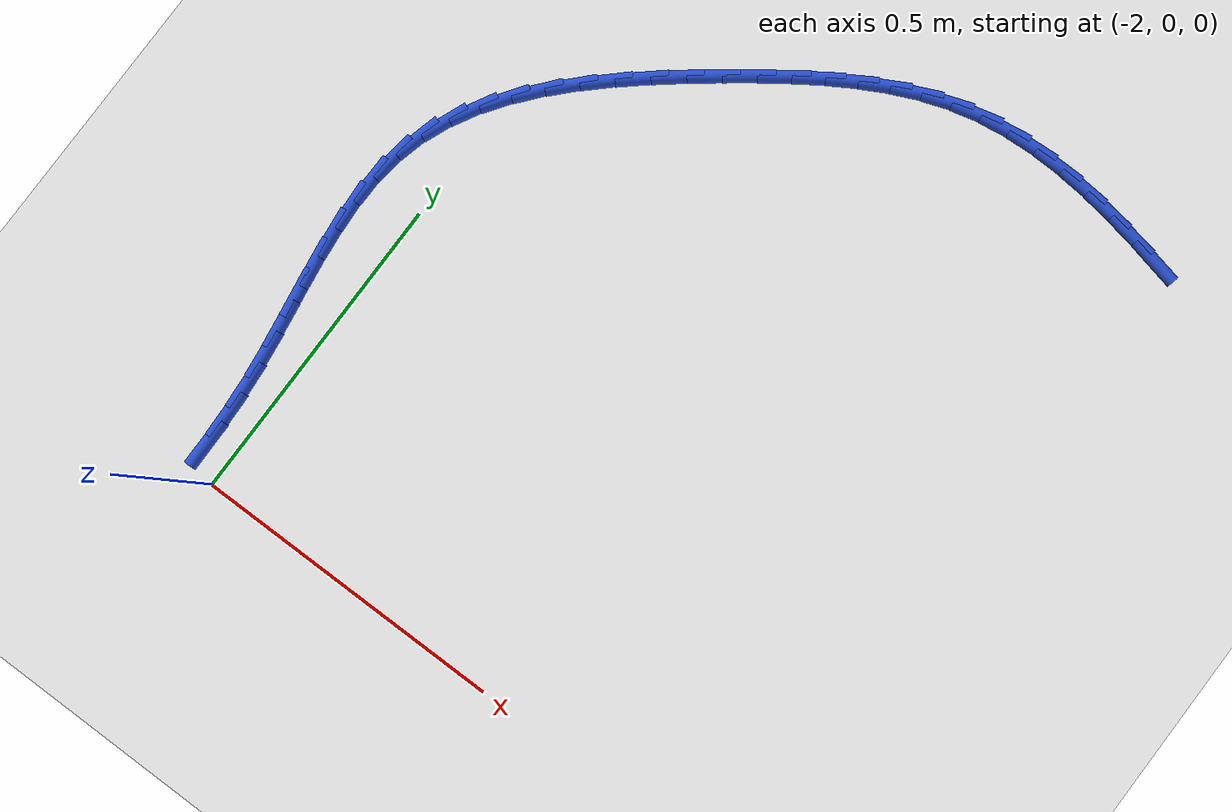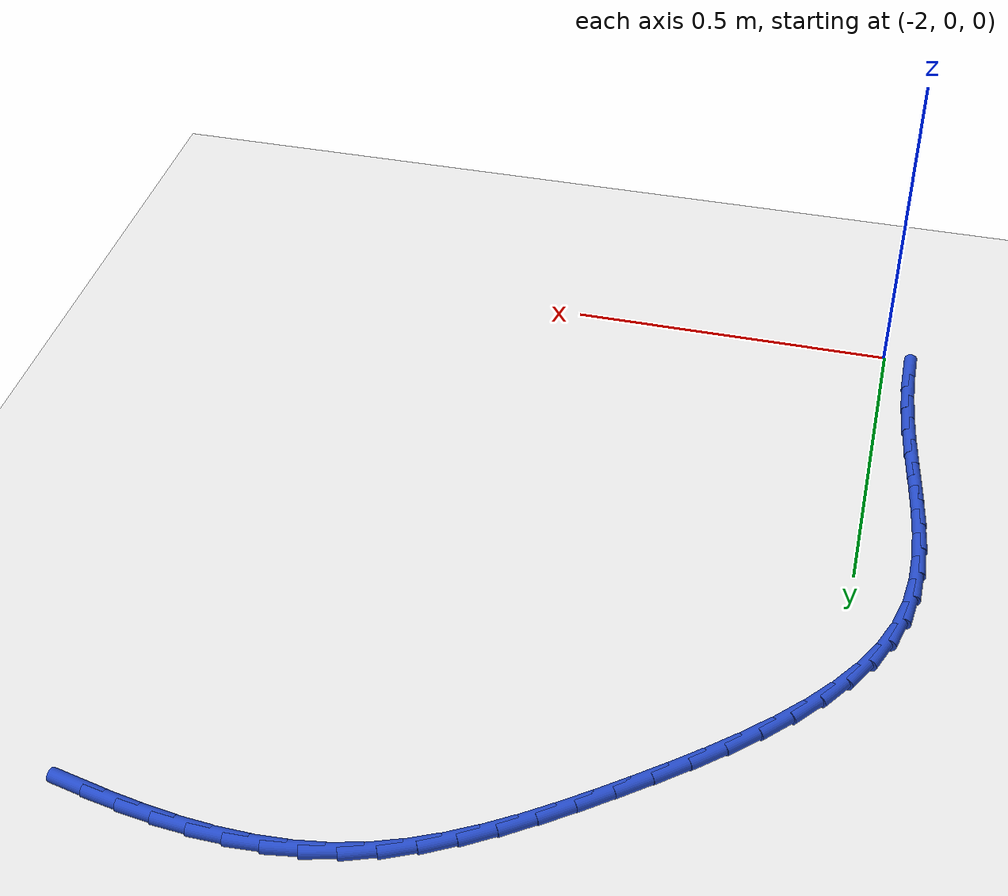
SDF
<sdf version="1.6">
 <world name="default">
  <model name="ground_plane">
   <static>1</static>
   <link name="link">
    <collision name="collision">
     <geometry><plane><normal>0 0 1</normal><size>100 100</size></plane></geometry>
     <surface><friction><ode><mu>100</mu><mu2>50</mu2></ode></friction></surface>
    </collision>
    <visual name="visual">
     <cast_shadows>0</cast_shadows>
     <geometry><plane><normal>0 0 1</normal><size>100 100</size></plane></geometry>
     <material>
      <script><uri>file://media/materials/scripts/gazebo.material</uri><name>Gazebo/WhiteGlow</name></script>
     </material>
    </visual>
   </link>
  </model>
  <model name="line">
   <link name="link_34">
    <pose>-1.0915207571480003 1.0925164339957065 0.01 0 1.57 -0.21035020720188574</pose>
    <collision name="collision">
     <geometry><cylinder><radius>0.01</radius><length>0.08</length></cylinder></geometry>
    </collision>
    <visual name="visual">
     <material>
      <script><name>Gazebo/Blue</name><uri>file://media/materials/scripts/gazebo.material</uri></script>
     </material>
     <geometry><cylinder><radius>0.01</radius><length>0.08</length></cylinder></geometry>
    </visual>
   </link>
   <link name="link_35">
    <pose>-1.1414643811776826 1.1031798266787785 0.01 0 1.57 -0.1757204989856719</pose>
    <collision name="collision">
     <geometry><cylinder><radius>0.01</radius><length>0.08</length></cylinder></geometry>
    </collision>
    <visual name="visual">
     <material>
      <script><name>Gazebo/Blue</name><uri>file://media/materials/scripts/gazebo.material</uri></script>
     </material>
     <geometry><cylinder><radius>0.01</radius><length>0.08</length></cylinder></geometry>
    </visual>
   </link>
   <link name="link_36">
    <pose>-1.1910998647097921 1.1119926928793287 0.01 0 1.57 -0.13164096641273396</pose>
    <collision name="collision">
     <geometry><cylinder><radius>0.01</radius><length>0.08</length></cylinder></geometry>
    </collision>
    <visual name="visual">
     <material>
      <script><name>Gazebo/Blue</name><uri>file://media/materials/scripts/gazebo.material</uri></script>
     </material>
     <geometry><cylinder><radius>0.01</radius><length>0.08</length></cylinder></geometry>
    </visual>
   </link>
   <link name="link_37">
    <pose>-1.240315626546367 1.1185091890913694 0.01 0 1.57 -0.07737065513932036</pose>
    <collision name="collision">
     <geometry><cylinder><radius>0.01</radius><length>0.08</length></cylinder></geometry>
    </collision>
    <visual name="visual">
     <material>
      <script><name>Gazebo/Blue</name><uri>file://media/materials/scripts/gazebo.material</uri></script>
     </material>
     <geometry><cylinder><radius>0.01</radius><length>0.08</length></cylinder></geometry>
    </visual>
   </link>
   <link name="link_38">
    <pose>-1.2890000854894446 1.1222834718089127 0.01 0 1.57 -0.012201861098301658</pose>
    <collision name="collision">
     <geometry><cylinder><radius>0.01</radius><length>0.08</length></cylinder></geometry>
    </collision>
    <visual name="visual">
     <material>
      <script><name>Gazebo/Blue</name><uri>file://media/materials/scripts/gazebo.material</uri></script>
     </material>
     <geometry><cylinder><radius>0.01</radius><length>0.08</length></cylinder></geometry>
    </visual>
   </link>
   <link name="link_39">
    <pose>-1.3370416603410629 1.1228696975259709 0.01 0 1.57 0.0643614175976423</pose>
    <collision name="collision">
     <geometry><cylinder><radius>0.01</radius><length>0.08</length></cylinder></geometry>
    </collision>
    <visual name="visual">
     <material>
      <script><name>Gazebo/Blue</name><uri>file://media/materials/scripts/gazebo.material</uri></script>
     </material>
     <geometry><cylinder><radius>0.01</radius><length>0.08</length></cylinder></geometry>
    </visual>
   </link>
   <link name="link_40">
    <pose>-1.3843287699032587 1.1198220227365556 0.01 0 1.57 0.15234874056052025</pose>
    <collision name="collision">
     <geometry><cylinder><radius>0.01</radius><length>0.08</length></cylinder></geometry>
    </collision>
    <visual name="visual">
     <material>
      <script><name>Gazebo/Blue</name><uri>file://media/materials/scripts/gazebo.material</uri></script>
     </material>
     <geometry><cylinder><radius>0.01</radius><length>0.08</length></cylinder></geometry>
    </visual>
   </link>
   <link name="link_41">
    <pose>-1.4307498329780703 1.1126946039346794 0.01 0 1.57 0.2505308959512029</pose>
    <collision name="collision">
     <geometry><cylinder><radius>0.01</radius><length>0.08</length></cylinder></geometry>
    </collision>
    <visual name="visual">
     <material>
      <script><name>Gazebo/Blue</name><uri>file://media/materials/scripts/gazebo.material</uri></script>
     </material>
     <geometry><cylinder><radius>0.01</radius><length>0.08</length></cylinder></geometry>
    </visual>
   </link>
   <link name="link_42">
    <pose>-1.4761991969471224 1.101063770459122 0.01 0 1.57 0.3467858972259525</pose>
    <collision name="collision">
     <geometry><cylinder><radius>0.01</radius><length>0.08</length></cylinder></geometry>
    </collision>
    <visual name="visual">
     <material>
      <script><name>Gazebo/Blue</name><uri>file://media/materials/scripts/gazebo.material</uri></script>
     </material>
     <geometry><cylinder><radius>0.01</radius><length>0.08</length></cylinder></geometry>
    </visual>
   </link>
   <link name="link_43">
    <pose>-1.5206985565593427 1.0849821298810909 0.01 0 1.57 0.4296740758856446</pose>
    <collision name="collision">
     <geometry><cylinder><radius>0.01</radius><length>0.08</length></cylinder></geometry>
    </collision>
    <visual name="visual">
     <material>
      <script><name>Gazebo/Blue</name><uri>file://media/materials/scripts/gazebo.material</uri></script>
     </material>
     <geometry><cylinder><radius>0.01</radius><length>0.08</length></cylinder></geometry>
    </visual>
   </link>
   <link name="link_44">
    <pose>-1.5643921408374286 1.0649605670692253 0.01 0 1.57 0.4985817375653926</pose>
    <collision name="collision">
     <geometry><cylinder><radius>0.01</radius><length>0.08</length></cylinder></geometry>
    </collision>
    <visual name="visual">
     <material>
      <script><name>Gazebo/Blue</name><uri>file://media/materials/scripts/gazebo.material</uri></script>
     </material>
     <geometry><cylinder><radius>0.01</radius><length>0.08</length></cylinder></geometry>
    </visual>
   </link>
   <link name="link_45">
    <pose>-1.607429144317001 1.0415285378745829 0.01 0 1.57 0.5540555599129547</pose>
    <collision name="collision">
     <geometry><cylinder><radius>0.01</radius><length>0.08</length></cylinder></geometry>
    </collision>
    <visual name="visual">
     <material>
      <script><name>Gazebo/Blue</name><uri>file://media/materials/scripts/gazebo.material</uri></script>
     </material>
     <geometry><cylinder><radius>0.01</radius><length>0.08</length></cylinder></geometry>
    </visual>
   </link>
   <link name="link_46">
    <pose>-1.6499587615336824 1.0152154981482209 0.01 0 1.57 0.5969824596638393</pose>
    <collision name="collision">
     <geometry><cylinder><radius>0.01</radius><length>0.08</length></cylinder></geometry>
    </collision>
    <visual name="visual">
     <material>
      <script><name>Gazebo/Blue</name><uri>file://media/materials/scripts/gazebo.material</uri></script>
     </material>
     <geometry><cylinder><radius>0.01</radius><length>0.08</length></cylinder></geometry>
    </visual>
   </link>
   <link name="link_47">
    <pose>-1.6921301870230945 0.9865509037411971 0.01 0 1.57 0.6283061228027785</pose>
    <collision name="collision">
     <geometry><cylinder><radius>0.01</radius><length>0.08</length></cylinder></geometry>
    </collision>
    <visual name="visual">
     <material>
      <script><name>Gazebo/Blue</name><uri>file://media/materials/scripts/gazebo.material</uri></script>
     </material>
     <geometry><cylinder><radius>0.01</radius><length>0.08</length></cylinder></geometry>
    </visual>
   </link>
   <link name="link_48">
    <pose>-1.7340926153208596 0.9560642105045684 0.01 0 1.57 0.6488808542251842</pose>
    <collision name="collision">
     <geometry><cylinder><radius>0.01</radius><length>0.08</length></cylinder></geometry>
    </collision>
    <visual name="visual">
     <material>
      <script><name>Gazebo/Blue</name><uri>file://media/materials/scripts/gazebo.material</uri></script>
     </material>
     <geometry><cylinder><radius>0.01</radius><length>0.08</length></cylinder></geometry>
    </visual>
   </link>
   <link name="link_49">
    <pose>-1.775994390227799 0.9242842288722098 0.01 0 1.57 0.6644556283217632</pose>
    <collision name="collision">
     <geometry><cylinder><radius>0.01</radius><length>0.08</length></cylinder></geometry>
    </collision>
    <visual name="visual">
     <material>
      <script><name>Gazebo/Blue</name><uri>file://media/materials/scripts/gazebo.material</uri></script>
     </material>
     <geometry><cylinder><radius>0.01</radius><length>0.08</length></cylinder></geometry>
    </visual>
   </link>
   <link name="link_50">
    <pose>-1.817760373162467 0.8915702224701834 0.01 0 1.57 0.6873590482464818</pose>
    <collision name="collision">
     <geometry><cylinder><radius>0.01</radius><length>0.08</length></cylinder></geometry>
    </collision>
    <visual name="visual">
     <material>
      <script><name>Gazebo/Blue</name><uri>file://media/materials/scripts/gazebo.material</uri></script>
     </material>
     <geometry><cylinder><radius>0.01</radius><length>0.08</length></cylinder></geometry>
    </visual>
   </link>
   <link name="link_51">
    <pose>-1.8587937516257595 0.8578856825752517 0.01 0 1.57 0.7198580936257576</pose>
    <collision name="collision">
     <geometry><cylinder><radius>0.01</radius><length>0.08</length></cylinder></geometry>
    </collision>
    <visual name="visual">
     <material>
      <script><name>Gazebo/Blue</name><uri>file://media/materials/scripts/gazebo.material</uri></script>
     </material>
     <geometry><cylinder><radius>0.01</radius><length>0.08</length></cylinder></geometry>
    </visual>
   </link>
   <link name="link_52">
    <pose>-1.898423410027241 0.8231377297927263 0.01 0 1.57 0.7629325911958803</pose>
    <collision name="collision">
     <geometry><cylinder><radius>0.01</radius><length>0.08</length></cylinder></geometry>
    </collision>
    <visual name="visual">
     <material>
      <script><name>Gazebo/Blue</name><uri>file://media/materials/scripts/gazebo.material</uri></script>
     </material>
     <geometry><cylinder><radius>0.01</radius><length>0.08</length></cylinder></geometry>
    </visual>
   </link>
   <link name="link_53">
    <pose>-1.9359782327764772 0.78723348472792 0.01 0 1.57 0.8179668360479697</pose>
    <collision name="collision">
     <geometry><cylinder><radius>0.01</radius><length>0.08</length></cylinder></geometry>
    </collision>
    <visual name="visual">
     <material>
      <script><name>Gazebo/Blue</name><uri>file://media/materials/scripts/gazebo.material</uri></script>
     </material>
     <geometry><cylinder><radius>0.01</radius><length>0.08</length></cylinder></geometry>
    </visual>
   </link>
   <link name="link_54">
    <pose>-1.9707871042830318 0.7500800679861436 0.01 0 1.57 0.8866948560286647</pose>
    <collision name="collision">
     <geometry><cylinder><radius>0.01</radius><length>0.08</length></cylinder></geometry>
    </collision>
    <visual name="visual">
     <material>
      <script><name>Gazebo/Blue</name><uri>file://media/materials/scripts/gazebo.material</uri></script>
     </material>
     <geometry><cylinder><radius>0.01</radius><length>0.08</length></cylinder></geometry>
    </visual>
   </link>
   <link name="link_55">
    <pose>-2.002178908956471 0.7115846001727095 0.01 0 1.57 0.9710391698354408</pose>
    <collision name="collision">
     <geometry><cylinder><radius>0.01</radius><length>0.08</length></cylinder></geometry>
    </collision>
    <visual name="visual">
     <material>
      <script><name>Gazebo/Blue</name><uri>file://media/materials/scripts/gazebo.material</uri></script>
     </material>
     <geometry><cylinder><radius>0.01</radius><length>0.08</length></cylinder></geometry>
    </visual>
   </link>
   <link name="link_56">
    <pose>-2.0294825312063596 0.6716542018929303 0.01 0 1.57 1.0727377393904476</pose>
    <collision name="collision">
     <geometry><cylinder><radius>0.01</radius><length>0.08</length></cylinder></geometry>
    </collision>
    <visual name="visual">
     <material>
      <script><name>Gazebo/Blue</name><uri>file://media/materials/scripts/gazebo.material</uri></script>
     </material>
     <geometry><cylinder><radius>0.01</radius><length>0.08</length></cylinder></geometry>
    </visual>
   </link>
   <link name="link_57">
    <pose>-2.052026855442261 0.6301959937521165 0.01 0 1.57 1.1926464720259444</pose>
    <collision name="collision">
     <geometry><cylinder><radius>0.01</radius><length>0.08</length></cylinder></geometry>
    </collision>
    <visual name="visual">
     <material>
      <script><name>Gazebo/Blue</name><uri>file://media/materials/scripts/gazebo.material</uri></script>
     </material>
     <geometry><cylinder><radius>0.01</radius><length>0.08</length></cylinder></geometry>
    </visual>
   </link>
   <link name="link_58">
    <pose>-2.0691407660737413 0.5871170963555814 0.01 0 1.57 1.3284170155489716</pose>
    <collision name="collision">
     <geometry><cylinder><radius>0.01</radius><length>0.08</length></cylinder></geometry>
    </collision>
    <visual name="visual">
     <material>
      <script><name>Gazebo/Blue</name><uri>file://media/materials/scripts/gazebo.material</uri></script>
     </material>
     <geometry><cylinder><radius>0.01</radius><length>0.08</length></cylinder></geometry>
    </visual>
   </link>
   <link name="link_59">
    <pose>-2.0802124267342177 0.5423360668450955 0.01 0 1.57 1.4564839817098578</pose>
    <collision name="collision">
     <geometry><cylinder><radius>0.01</radius><length>0.08</length></cylinder></geometry>
    </collision>
    <visual name="visual">
     <material>
      <script><name>Gazebo/Blue</name><uri>file://media/materials/scripts/gazebo.material</uri></script>
     </material>
     <geometry><cylinder><radius>0.01</radius><length>0.08</length></cylinder></geometry>
    </visual>
   </link>
   <link name="link_60">
    <pose>-2.085538518990908 0.49594673959784213 0.01 0 1.57 1.5584921550619775</pose>
    <collision name="collision">
     <geometry><cylinder><radius>0.01</radius><length>0.08</length></cylinder></geometry>
    </collision>
    <visual name="visual">
     <material>
      <script><name>Gazebo/Blue</name><uri>file://media/materials/scripts/gazebo.material</uri></script>
     </material>
     <geometry><cylinder><radius>0.01</radius><length>0.08</length></cylinder></geometry>
    </visual>
   </link>
   <link name="link_61">
    <pose>-2.0861262784041963 0.44818003372527043 0.01 0 1.57 -1.5070017228179915</pose>
    <collision name="collision">
     <geometry><cylinder><radius>0.01</radius><length>0.08</length></cylinder></geometry>
    </collision>
    <visual name="visual">
     <material>
      <script><name>Gazebo/Blue</name><uri>file://media/materials/scripts/gazebo.material</uri></script>
     </material>
     <geometry><cylinder><radius>0.01</radius><length>0.08</length></cylinder></geometry>
    </visual>
   </link>
   <link name="link_62">
    <pose>-2.083001875773323 0.39927052144923797 0.01 0 1.57 -1.454687901687123</pose>
    <collision name="collision">
     <geometry><cylinder><radius>0.01</radius><length>0.08</length></cylinder></geometry>
    </collision>
    <visual name="visual">
     <material>
      <script><name>Gazebo/Blue</name><uri>file://media/materials/scripts/gazebo.material</uri></script>
     </material>
     <geometry><cylinder><radius>0.01</radius><length>0.08</length></cylinder></geometry>
    </visual>
   </link>
   <link name="link_63">
    <pose>-2.07719148189753 0.3494527749916009 0.01 0 1.57 -1.4239116671337897</pose>
    <collision name="collision">
     <geometry><cylinder><radius>0.01</radius><length>0.08</length></cylinder></geometry>
    </collision>
    <visual name="visual">
     <material>
      <script><name>Gazebo/Blue</name><uri>file://media/materials/scripts/gazebo.material</uri></script>
     </material>
     <geometry><cylinder><radius>0.01</radius><length>0.08</length></cylinder></geometry>
    </visual>
   </link>
   <link name="link_64">
    <pose>-2.069721267576058 0.2989613665742165 0.01 0 1.57 -1.4130029870904939</pose>
    <collision name="collision">
     <geometry><cylinder><radius>0.01</radius><length>0.08</length></cylinder></geometry>
    </collision>
    <visual name="visual">
     <material>
      <script><name>Gazebo/Blue</name><uri>file://media/materials/scripts/gazebo.material</uri></script>
     </material>
     <geometry><cylinder><radius>0.01</radius><length>0.08</length></cylinder></geometry>
    </visual>
   </link>
   <link name="link_65">
    <pose>-2.0616174036081483 0.24803086841894134 0.01 0 1.57 -1.4211205863632141</pose>
    <collision name="collision">
     <geometry><cylinder><radius>0.01</radius><length>0.08</length></cylinder></geometry>
    </collision>
    <visual name="visual">
     <material>
      <script><name>Gazebo/Blue</name><uri>file://media/materials/scripts/gazebo.material</uri></script>
     </material>
     <geometry><cylinder><radius>0.01</radius><length>0.08</length></cylinder></geometry>
    </visual>
   </link>
   <link name="link_66">
    <pose>-2.0539060607930426 0.19689585274763197 0.01 0 1.57 -1.4482811145953538</pose>
    <collision name="collision">
     <geometry><cylinder><radius>0.01</radius><length>0.08</length></cylinder></geometry>
    </collision>
    <visual name="visual">
     <material>
      <script><name>Gazebo/Blue</name><uri>file://media/materials/scripts/gazebo.material</uri></script>
     </material>
     <geometry><cylinder><radius>0.01</radius><length>0.08</length></cylinder></geometry>
    </visual>
   </link>
   <link name="link_67">
    <pose>-2.0476134099234784 0.14579089178108068 0.01 0 1.57 -1.490536856622085</pose>
    <collision name="collision">
     <geometry><cylinder><radius>0.01</radius><length>0.08</length></cylinder></geometry>
    </collision>
    <visual name="visual">
     <material>
      <script><name>Gazebo/Blue</name><uri>file://media/materials/scripts/gazebo.material</uri></script>
     </material>
     <geometry><cylinder><radius>0.01</radius><length>0.08</length></cylinder></geometry>
    </visual>
   </link>
   <link name="link_68">
    <pose>-2.043520984564976 0.09491048674120858 0.01 0 1.57 -1.5297198922819308</pose>
    <collision name="collision">
     <geometry><cylinder><radius>0.01</radius><length>0.08</length></cylinder></geometry>
    </collision>
    <visual name="visual">
     <material>
      <script><name>Gazebo/Blue</name><uri>file://media/materials/scripts/gazebo.material</uri></script>
     </material>
     <geometry><cylinder><radius>0.01</radius><length>0.08</length></cylinder></geometry>
    </visual>
   </link>
   <link name="link_69">
    <pose>-2.041440517036531 0.044290287700851624 0.01 0 1.57 -1.5609272316955507</pose>
    <collision name="collision">
     <geometry><cylinder><radius>0.01</radius><length>0.08</length></cylinder></geometry>
    </collision>
    <visual name="visual">
     <material>
      <script><name>Gazebo/Blue</name><uri>file://media/materials/scripts/gazebo.material</uri></script>
     </material>
     <geometry><cylinder><radius>0.01</radius><length>0.08</length></cylinder></geometry>
    </visual>
   </link>
  </model>
 </world>
</sdf>
